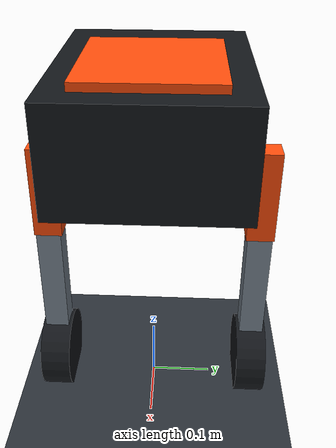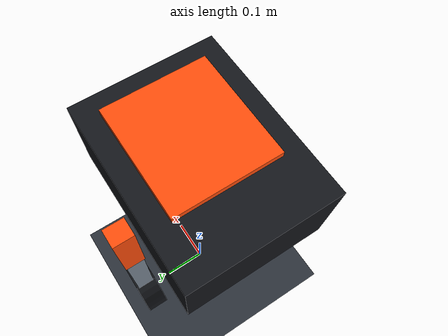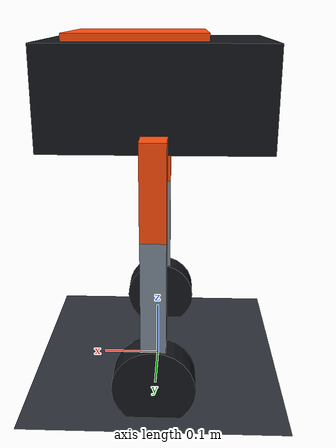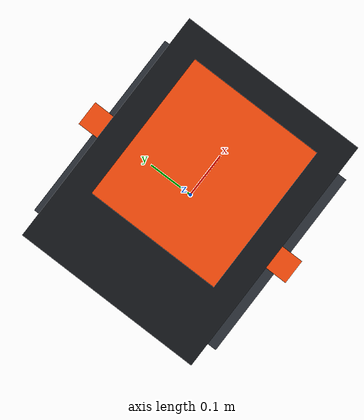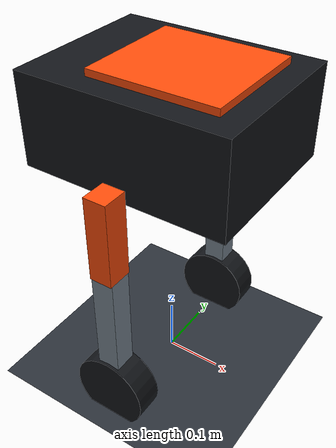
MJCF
<?xml version="1.0" encoding="utf-8"?>
<mujoco model="actuatex_serial_wheel_legged">
  <compiler angle="radian" autolimits="true" inertiafromgeom="false"/>
  <option timestep="0.005" gravity="0 0 -9.81" integrator="implicitfast"
          cone="elliptic" impratio="10" iterations="50" ls_iterations="10"/>
  <visual>
    <global offwidth="1280" offheight="720"/>
    <quality shadowsize="2048"/>
  </visual>

  <default>
    <joint damping="0"/>
    <default class="leg_joint">
      <joint type="hinge" axis="0 1 0" armature="0.01"
             frictionloss="0.02" limited="true"/>
    </default>
    <default class="wheel_joint">
      <joint type="hinge" axis="0 1 0" armature="0.02"
             frictionloss="0" limited="false"/>
    </default>
    <!-- Robot geoms collide with the floor but not with one another. -->
    <default class="robot_collision">
      <geom contype="1" conaffinity="0" condim="6"
            friction="1.0 0.005 0.0001" solref="0.02 1"
            solimp="0.9 0.95 0.001" margin="0.001"/>
    </default>
    <default class="robot_visual">
      <geom contype="0" conaffinity="0" group="2"/>
    </default>
  </default>

  <asset>
    <material name="actuatex_orange" rgba="1.0 0.30 0.04 1.0"/>
    <material name="graphite" rgba="0.075 0.085 0.10 1.0"/>
    <material name="metal" rgba="0.48 0.53 0.58 1.0"/>
    <material name="floor_material" rgba="0.17 0.19 0.22 1.0"/>
  </asset>

  <worldbody>
    <light name="key_light" pos="1 -2 4" dir="-0.2 0.3 -1" diffuse="0.9 0.9 0.9"/>
    <light name="fill_light" pos="-2 2 2.5" dir="0.4 -0.3 -1" diffuse="0.35 0.38 0.45"/>
    <geom name="floor" type="plane" size="0 0 0.1" material="floor_material"
          contype="0" conaffinity="1" condim="6"
          friction="1.0 0.005 0.0001" solref="0.02 1"
          solimp="0.9 0.95 0.001"/>

    <body name="base_link" pos="0 0 0.50">
      <freejoint name="root"/>
      <inertial pos="0 0 0" mass="8.8" diaginertia="0.07627 0.11381 0.15253"/>
      <geom name="base_collision" class="robot_collision" type="box"
            size="0.18 0.14 0.08" material="graphite"/>
      <geom name="top_plate_visual" class="robot_visual" type="box"
            pos="0.03 0 0.086" size="0.11 0.10 0.006"
            material="actuatex_orange"/>
      <site name="imu_site" pos="0 0 0" size="0.008" rgba="0.2 0.8 1 1"/>

      <body name="left_upper_link" pos="0 0.17 -0.05">
        <joint name="left_hip_joint" class="leg_joint" range="-1.0 1.0"/>
        <inertial pos="0 0 -0.075" mass="0.16"
                  diaginertia="0.000327 0.000321 0.000048"/>
        <geom name="left_upper_collision" class="robot_collision" type="box"
              pos="0 0 -0.075" size="0.020 0.0225 0.075"
              material="actuatex_orange"/>

        <body name="left_lower_link" pos="0 0 -0.15">
          <joint name="left_knee_joint" class="leg_joint" range="-1.5 0.2"/>
          <inertial pos="0 0 -0.125" mass="0.36"
                    diaginertia="0.001923 0.001923 0.000096"/>
          <geom name="left_lower_collision" class="robot_collision" type="box"
                pos="0 0 -0.125" size="0.020 0.020 0.125" material="metal"/>

          <body name="left_wheel_link" pos="0 0 -0.25">
            <joint name="left_wheel_joint" class="wheel_joint"/>
            <inertial pos="0 0 0" mass="1.22"
                      diaginertia="0.001643 0.002779 0.001643"/>
            <geom name="left_wheel_collision" class="robot_collision"
                  type="cylinder" size="0.0675 0.025"
                  quat="0.7071067811865476 0.7071067811865475 0 0"
                  material="graphite"/>
          </body>
        </body>
      </body>

      <body name="right_upper_link" pos="0 -0.17 -0.05">
        <joint name="right_hip_joint" class="leg_joint" range="-1.0 1.0"/>
        <inertial pos="0 0 -0.075" mass="0.16"
                  diaginertia="0.000327 0.000321 0.000048"/>
        <geom name="right_upper_collision" class="robot_collision" type="box"
              pos="0 0 -0.075" size="0.020 0.0225 0.075"
              material="actuatex_orange"/>

        <body name="right_lower_link" pos="0 0 -0.15">
          <joint name="right_knee_joint" class="leg_joint" range="-1.5 0.2"/>
          <inertial pos="0 0 -0.125" mass="0.36"
                    diaginertia="0.001923 0.001923 0.000096"/>
          <geom name="right_lower_collision" class="robot_collision" type="box"
                pos="0 0 -0.125" size="0.020 0.020 0.125" material="metal"/>

          <body name="right_wheel_link" pos="0 0 -0.25">
            <joint name="right_wheel_joint" class="wheel_joint"/>
            <inertial pos="0 0 0" mass="1.22"
                      diaginertia="0.001643 0.002779 0.001643"/>
            <geom name="right_wheel_collision" class="robot_collision"
                  type="cylinder" size="0.0675 0.025"
                  quat="0.7071067811865476 0.7071067811865475 0 0"
                  material="graphite"/>
          </body>
        </body>
      </body>
    </body>
  </worldbody>

  <!-- Actuator order is the public policy action contract. -->
  <actuator>
    <motor name="left_hip_torque" joint="left_hip_joint" gear="1"
           ctrllimited="true" ctrlrange="-30 30"/>
    <motor name="left_knee_torque" joint="left_knee_joint" gear="1"
           ctrllimited="true" ctrlrange="-30 30"/>
    <motor name="right_hip_torque" joint="right_hip_joint" gear="1"
           ctrllimited="true" ctrlrange="-30 30"/>
    <motor name="right_knee_torque" joint="right_knee_joint" gear="1"
           ctrllimited="true" ctrlrange="-30 30"/>
    <motor name="left_wheel_torque" joint="left_wheel_joint" gear="1"
           ctrllimited="true" ctrlrange="-12 12"/>
    <motor name="right_wheel_torque" joint="right_wheel_joint" gear="1"
           ctrllimited="true" ctrlrange="-12 12"/>
  </actuator>
</mujoco>
